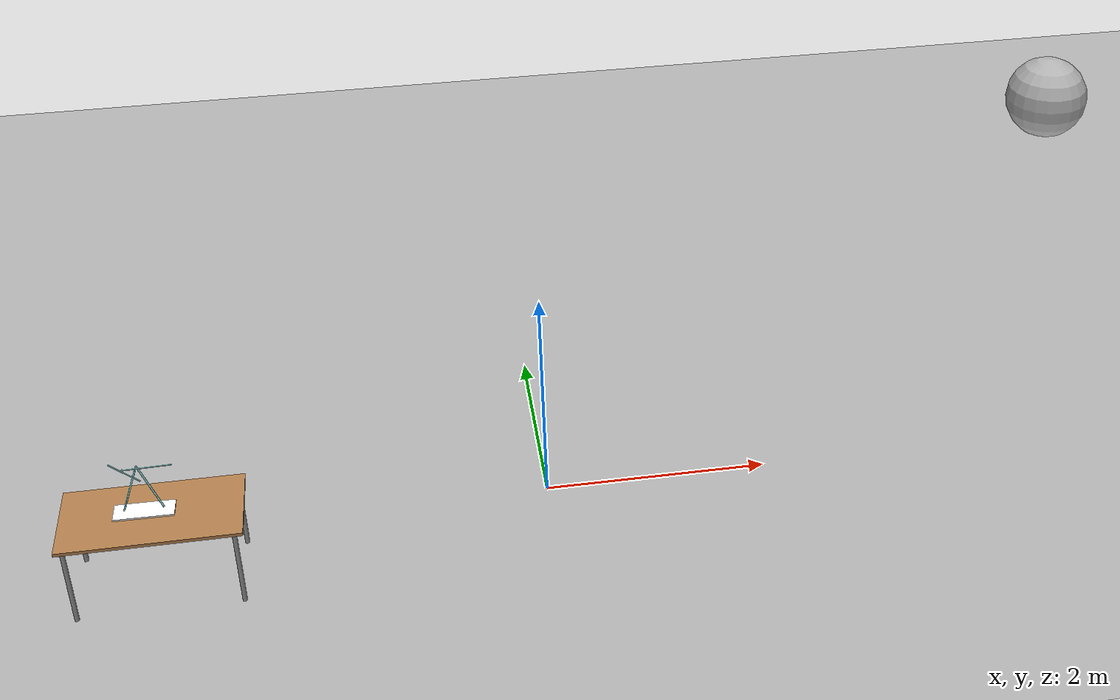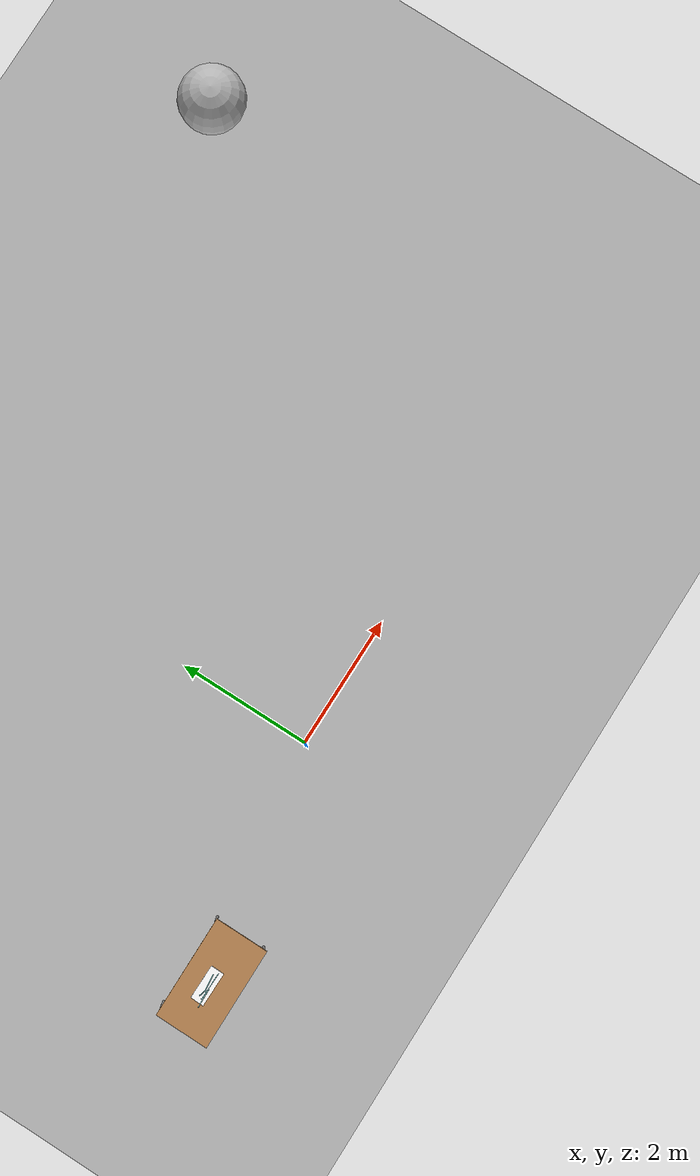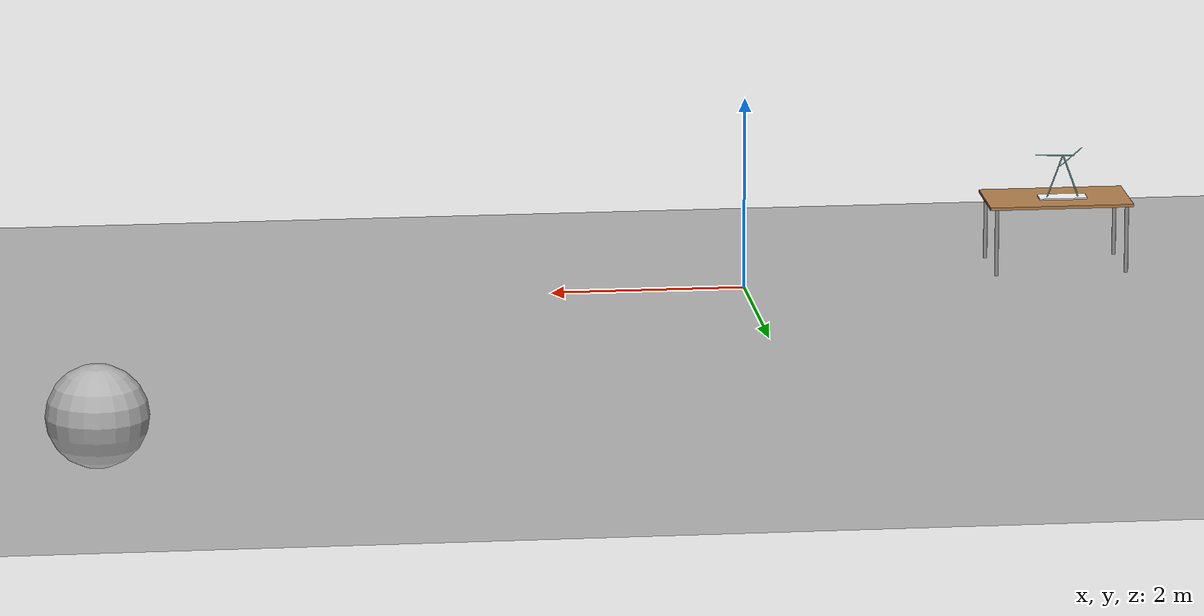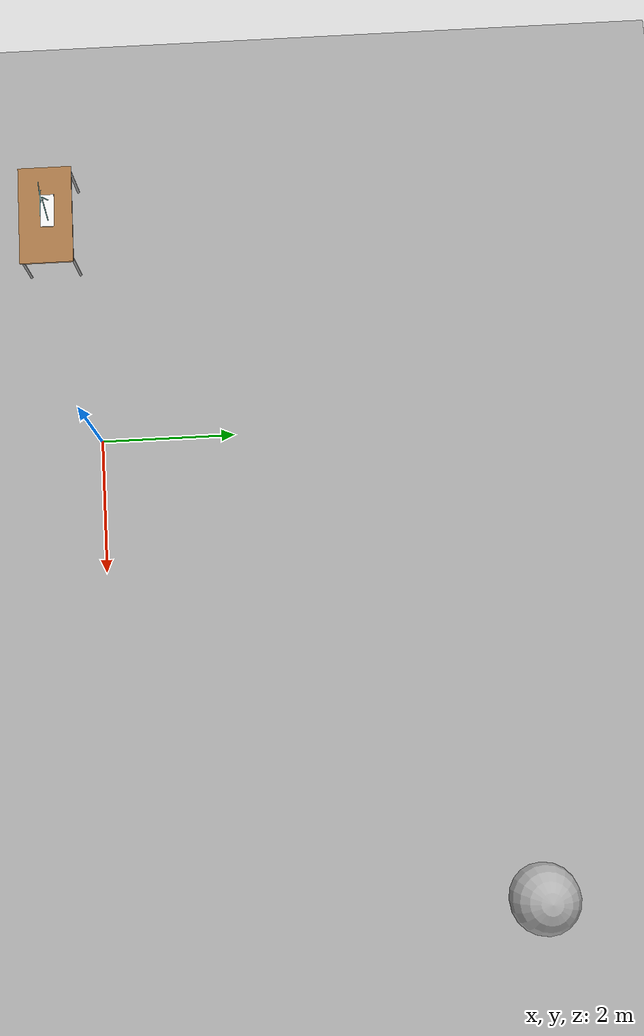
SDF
<sdf version="1.10">
 <world name="empty">
  <physics name="1ms" type="ignored">
   <max_step_size>0.001</max_step_size>
   <real_time_factor>1</real_time_factor>
   <real_time_update_rate>1000</real_time_update_rate>
  </physics>
  <plugin name="gz::sim::systems::Physics" filename="gz-sim-physics-system"/>
  <plugin name="gz::sim::systems::UserCommands" filename="gz-sim-user-commands-system"/>
  <plugin name="gz::sim::systems::SceneBroadcaster" filename="gz-sim-scene-broadcaster-system"/>
  <plugin name="gz::sim::systems::Contact" filename="gz-sim-contact-system"/>
  <gravity>0 0 -9.8000000000000007</gravity>
  <magnetic_field>5.5644999999999998e-06 2.2875799999999999e-05 -4.2388400000000002e-05</magnetic_field>
  <atmosphere type="adiabatic"/>
  <scene>
   <ambient>0.400000006 0.400000006 0.400000006 1</ambient>
   <background>0.699999988 0.699999988 0.699999988 1</background>
   <shadows>true</shadows>
  </scene>
  <model name="Table">
   <static>true</static>
   <link name="link">
    <collision name="surface">
     <pose>0 0 1 0 0 0</pose>
     <geometry><box><size>1.5 0.80000000000000004 0.029999999999999999</size></box></geometry>
     <surface><friction><ode><mu>0.59999999999999998</mu><mu2>0.59999999999999998</mu2></ode></friction></surface>
    </collision>
    <visual name="visual1">
     <pose>0 0 1 0 0 0</pose>
     <geometry><box><size>1.5 0.80000000000000004 0.029999999999999999</size></box></geometry>
     <material>
      <diffuse>1 1 1 1</diffuse>
      <script><uri>file://media/materials/scripts/gazebo.material</uri><name>Gazebo/Wood</name></script>
      <pbr>
       <metal>
        <albedo_map>https://fuel.gazebosim.org/1.0/openrobotics/models/table/4/files/Table_Diffuse.jpg</albedo_map>
       </metal>
      </pbr>
     </material>
    </visual>
    <collision name="front_left_leg">
     <pose>0.68000000000000005 0.38 0.5 0 0 0</pose>
     <geometry><cylinder><radius>0.02</radius><length>1</length></cylinder></geometry>
    </collision>
    <visual name="front_left_leg">
     <pose>0.68000000000000005 0.38 0.5 0 0 0</pose>
     <geometry><cylinder><radius>0.02</radius><length>1</length></cylinder></geometry>
     <material>
      <diffuse>0.5 0.5 0.5 1</diffuse>
      <script><uri>file://media/materials/scripts/gazebo.material</uri><name>Gazebo/Grey</name></script>
     </material>
    </visual>
    <collision name="front_right_leg">
     <pose>0.68000000000000005 -0.38 0.5 0 0 0</pose>
     <geometry><cylinder><radius>0.02</radius><length>1</length></cylinder></geometry>
    </collision>
    <visual name="front_right_leg">
     <pose>0.68000000000000005 -0.38 0.5 0 0 0</pose>
     <geometry><cylinder><radius>0.02</radius><length>1</length></cylinder></geometry>
     <material>
      <diffuse>0.5 0.5 0.5 1</diffuse>
      <script><uri>file://media/materials/scripts/gazebo.material</uri><name>Gazebo/Grey</name></script>
     </material>
    </visual>
    <collision name="back_right_leg">
     <pose>-0.68000000000000005 -0.38 0.5 0 0 0</pose>
     <geometry><cylinder><radius>0.02</radius><length>1</length></cylinder></geometry>
    </collision>
    <visual name="back_right_leg">
     <pose>-0.68000000000000005 -0.38 0.5 0 0 0</pose>
     <geometry><cylinder><radius>0.02</radius><length>1</length></cylinder></geometry>
     <material>
      <diffuse>0.5 0.5 0.5 1</diffuse>
      <script><uri>file://media/materials/scripts/gazebo.material</uri><name>Gazebo/Grey</name></script>
     </material>
    </visual>
    <collision name="back_left_leg">
     <pose>-0.68000000000000005 0.38 0.5 0 0 0</pose>
     <geometry><cylinder><radius>0.02</radius><length>1</length></cylinder></geometry>
    </collision>
    <visual name="back_left_leg">
     <pose>-0.68000000000000005 0.38 0.5 0 0 0</pose>
     <geometry><cylinder><radius>0.02</radius><length>1</length></cylinder></geometry>
     <material>
      <diffuse>0.5 0.5 0.5 1</diffuse>
      <script><uri>file://media/materials/scripts/gazebo.material</uri><name>Gazebo/Grey</name></script>
     </material>
    </visual>
    <inertial>
     <mass>1</mass>
     <inertia><ixx>1</ixx><ixy>0</ixy><ixz>0</ixz><iyy>1</iyy><iyz>0</iyz><izz>1</izz></inertia>
    </inertial>
   </link>
   <pose>-3.3481700000000001 -0.64016600000000001 -0.29861799999999999 0 0 0</pose>
  </model>
  <model name="pendulum">
   <link name="base">
    <inertial auto="true">
     <pose>-0.0012303560498434795 0.00091051956001138323 0.020588358777444447 0 0 0</pose>
     <mass>4.4644839919190522</mass>
     <inertia>
      <ixx>0.11341283466323132</ixx>
      <ixy>-5.0013973426137008e-06</ixy>
      <ixz>0.0011228137034167856</ixz>
      <iyy>0.038772302722194549</iyy>
      <iyz>8.1659178430312177e-05</iyz>
      <izz>0.1018878577257607</izz>
     </inertia>
    </inertial>
    <visual name="vis_plate_on_ground">
     <pose>0 0.001 0.00050000000000000001 0 0 0</pose>
     <geometry><box><size>0.20000000000000001 0.5 0.014999999999999999</size></box></geometry>
     <material>
      <ambient>1 1 1 1</ambient>
      <diffuse>1 1 1 1</diffuse>
      <specular>1 1 1 1</specular>
      <pbr>
       <metal>
        <albedo_map>materials/Wood/Wood_COLOR.jpg</albedo_map>
        <normal_map>materials/Wood/Wood_NORM.jpg</normal_map>
        <roughness_map>materials/Wood/Wood_ROUGH.jpg</roughness_map>
       </metal>
      </pbr>
     </material>
    </visual>
    <visual name="vis_pole">
     <pose>-0.01375 0.081900000000000001 0.22500000000000001 0.34899999999999998 0 0</pose>
     <geometry><cylinder><length>0.4788</length><radius>0.0070000000000000001</radius></cylinder></geometry>
     <material>
      <ambient>0.660000026 1 1 1</ambient>
      <diffuse>0.660000026 1 1 1</diffuse>
      <specular>0.660000026 1 1 1</specular>
      <pbr><metal><metalness>0.9</metalness></metal></pbr>
     </material>
    </visual>
    <visual name="vis_pole2">
     <pose>-0.01375 -0.081900000000000001 0.22500000000000001 -0.34899999999999998 0 0</pose>
     <geometry><cylinder><length>0.4788</length><radius>0.0070000000000000001</radius></cylinder></geometry>
     <material>
      <ambient>0.660000026 1 1 1</ambient>
      <diffuse>0.660000026 1 1 1</diffuse>
      <specular>0.660000026 1 1 1</specular>
      <pbr><metal><metalness>0.9</metalness></metal></pbr>
     </material>
    </visual>
    <collision name="col_plate_on_ground">
     <density>2710</density>
     <pose>0 0.001 0.00050000000000000001 0 0 0</pose>
     <geometry><box><size>0.20000000000000001 0.5 0.014999999999999999</size></box></geometry>
    </collision>
    <collision name="col_pole">
     <density>2710</density>
     <pose>-0.01375 0.081900000000000001 0.22500000000000001 0.34899999999999998 0 0</pose>
     <geometry><cylinder><length>0.4788</length><radius>0.0070000000000000001</radius></cylinder></geometry>
    </collision>
    <collision name="col_pole2">
     <density>2710</density>
     <pose>-0.01375 -0.081900000000000001 0.22500000000000001 -0.34899999999999998 0 0</pose>
     <geometry><cylinder><length>0.4788</length><radius>0.0070000000000000001</radius></cylinder></geometry>
    </collision>
   </link>
   <link name="upper_link">
    <pose>-1.1095568908103814e-12 0.08707669666403639 0.44339256002930161 1.6009349978430896 -7.5888601838749163e-12 -5.7979598715973162e-13</pose>
    <inertial auto="true">
     <pose>0.0085981308411214961 0 0.040766355140186922 0 0 0</pose>
     <mass>0.11387095272017905</mass>
     <inertia>
      <ixx>0.0017332803132548633</ixx>
      <ixy>-5.1286877684005049e-35</ixy>
      <ixz>7.4601936826155947e-06</ixz>
      <iyy>0.0017351140112182809</iyy>
      <iyz>1.8838197508913673e-40</iyz>
      <izz>4.3745101093934988e-06</izz>
     </inertia>
    </inertial>
    <visual name="vis_upper_joint">
     <pose>-0.0025000000000000001 0 0.087499999999999994 3.1415926535897931 1.5707926536359933 3.1415926535897931</pose>
     <geometry>
      <cylinder><radius>0.0050000000000000001</radius><length>0.014999999999999999</length></cylinder>
     </geometry>
     <material>
      <ambient>0.660000026 1 1 1</ambient>
      <diffuse>0.660000026 1 1 1</diffuse>
      <specular>0.660000026 1 1 1</specular>
      <pbr><metal><metalness>0.9</metalness></metal></pbr>
     </material>
    </visual>
    <visual name="vis_bob2">
     <pose>0.01 0 0.20000000000000001 3.1415926535897931 1.5707926536359933 3.1415926535897931</pose>
     <geometry><cylinder><radius>0.0050000000000000001</radius><length>0.02</length></cylinder></geometry>
     <material>
      <ambient>0.660000026 1 1 1</ambient>
      <diffuse>0.660000026 1 1 1</diffuse>
      <specular>0.660000026 1 1 1</specular>
      <pbr><metal><metalness>0.9</metalness></metal></pbr>
     </material>
    </visual>
    <visual name="vis_cylinder">
     <pose>0.01 0 0 0 0 0</pose>
     <geometry>
      <cylinder><radius>0.0050000000000000001</radius><length>0.39500000000000002</length></cylinder>
     </geometry>
     <material>
      <ambient>0.660000026 1 1 1</ambient>
      <diffuse>0.660000026 1 1 1</diffuse>
      <specular>0.660000026 1 1 1</specular>
      <pbr><metal><metalness>0.9</metalness></metal></pbr>
     </material>
    </visual>
    <collision name="col_upper_joint">
     <density>2710</density>
     <pose>-0.0025000000000000001 0 0.087499999999999994 3.1415926535897931 1.5707926536359933 3.1415926535897931</pose>
     <geometry><cylinder><radius>0.01</radius><length>0.014999999999999999</length></cylinder></geometry>
    </collision>
    <collision name="col_bob2">
     <density>2710</density>
     <pose>0.01 0 0.20699999999999999 3.1415926535897931 1.5707926536359933 3.1415926535897931</pose>
     <geometry><cylinder><radius>0.01</radius><length>0.02</length></cylinder></geometry>
    </collision>
    <collision name="col_cylinder">
     <density>2710</density>
     <pose>0.01 0 0 0 0 0</pose>
     <geometry>
      <cylinder><radius>0.0050000000000000001</radius><length>0.39500000000000002</length></cylinder>
     </geometry>
    </collision>
   </link>
   <link name="lower_link">
    <pose>0.024999999998840838 -0.11140768838060788 0.43482195921674904 -2.275272606541749 -7.5895023301102985e-12 -5.797401336125813e-13</pose>
    <inertial auto="true">
     <pose>0 0 0.025000000000000001 0 0 0</pose>
     <mass>0.063852870684212554</mass>
     <inertia>
      <ixx>0.00047929561057337048</ixx>
      <ixy>0</ixy>
      <ixz>0</ixz>
      <iyy>0.00047929561057337048</iyy>
      <iyz>0</iyz>
      <izz>7.9816088355265694e-07</izz>
     </inertia>
    </inertial>
    <visual name="vis_cylinder">
     <pose>0 0 0.025000000000000001 0 0 0</pose>
     <geometry>
      <cylinder><radius>0.0050000000000000001</radius><length>0.29999999999999999</length></cylinder>
     </geometry>
     <material>
      <ambient>0.660000026 1 1 1</ambient>
      <diffuse>0.660000026 1 1 1</diffuse>
      <specular>0.660000026 1 1 1</specular>
      <pbr><metal><metalness>0.9</metalness></metal></pbr>
     </material>
    </visual>
    <collision name="col_cylinder">
     <density>2710</density>
     <pose>0 0 0.025000000000000001 0 0 0</pose>
     <geometry>
      <cylinder><radius>0.0050000000000000001</radius><length>0.29999999999999999</length></cylinder>
     </geometry>
    </collision>
   </link>
   <joint name="upper_joint" type="revolute">
    <pose>-0.0024999999999999996 -5.5511151231257827e-17 0.087500000000000022 0 0 0</pose>
    <parent>base</parent>
    <child>upper_link</child>
    <axis>
     <xyz>1 0 0</xyz>
     <limit>
      <lower>-inf</lower>
      <upper>inf</upper>
      <effort>inf</effort>
      <velocity>inf</velocity>
      <stiffness>100000000</stiffness>
      <dissipation>1</dissipation>
     </limit>
     <dynamics>
      <spring_reference>0</spring_reference>
      <spring_stiffness>0</spring_stiffness>
      <damping>0</damping>
      <friction>0</friction>
     </dynamics>
    </axis>
   </joint>
   <joint name="lower_joint" type="revolute">
    <pose>-0.014999999999999996 -0.0010154900000000078 -0.0027330600000003424 1.77 -1.3782188922632868e-27 8.6684348364220725e-28</pose>
    <parent>upper_link</parent>
    <child>lower_link</child>
    <axis>
     <xyz>1 -2.2255236904124528e-67 3.0292258760486853e-28</xyz>
     <limit>
      <lower>-inf</lower>
      <upper>inf</upper>
      <effort>inf</effort>
      <velocity>inf</velocity>
      <stiffness>100000000</stiffness>
      <dissipation>1</dissipation>
     </limit>
     <dynamics>
      <spring_reference>0</spring_reference>
      <spring_stiffness>0</spring_stiffness>
      <damping>0</damping>
      <friction>0</friction>
     </dynamics>
    </axis>
   </joint>
   <pose>-3.4068399999999999 -0.60838599999999998 0.72338100000000005 1.3490300000000041e-11 -3.8293100000000005e-10 -1.58555</pose>
   <static>false</static>
  </model>
  <model name="ground_plane">
   <static>true</static>
   <link name="link">
    <collision name="collision">
     <geometry><plane><normal>0 0 1</normal><size>100 100</size></plane></geometry>
     <surface><friction><ode><mu>100</mu><mu2>50</mu2></ode></friction></surface>
    </collision>
    <visual name="visual">
     <cast_shadows>false</cast_shadows>
     <geometry><plane><normal>0 0 1</normal><size>100 100</size></plane></geometry>
     <material>
      <ambient>0.300000012 0.300000012 0.300000012 1</ambient>
      <diffuse>0.699999988 0.699999988 0.699999988 1</diffuse>
      <specular>0.00999999978 0.00999999978 0.00999999978 1</specular>
     </material>
    </visual>
    <inertial>
     <mass>1</mass>
     <inertia><ixx>1</ixx><ixy>0</ixy><ixz>0</ixz><iyy>1</iyy><iyz>0</iyz><izz>1</izz></inertia>
    </inertial>
   </link>
   <pose>4.1498913592415505 -1.7287150260537345 0 0 0 0</pose>
  </model>
  <model name="sphere">
   <pose>6.9498248698957354 6.0061633088347746 0.5 0 0 0</pose>
   <link name="sphere_link">
    <inertial>
     <inertia>
      <ixx>0.10000000000000001</ixx>
      <ixy>0</ixy>
      <ixz>0</ixz>
      <iyy>0.10000000000000001</iyy>
      <iyz>0</iyz>
      <izz>0.10000000000000001</izz>
     </inertia>
     <mass>1</mass>
    </inertial>
    <collision name="sphere_collision"><geometry><sphere><radius>0.5</radius></sphere></geometry></collision>
    <visual name="sphere_visual">
     <geometry><sphere><radius>0.5</radius></sphere></geometry>
     <material>
      <ambient>0.300000012 0.300000012 0.300000012 1</ambient>
      <diffuse>0.699999988 0.699999988 0.699999988 1</diffuse>
      <specular>1 1 1 1</specular>
     </material>
    </visual>
   </link>
   <static>false</static>
  </model>
  <light name="sun" type="directional">
   <pose>0 0 10 0 0 0</pose>
   <intensity>1</intensity>
   <direction>-0.5 0.10000000000000001 -0.90000000000000002</direction>
   <diffuse>0.800000012 0.800000012 0.800000012 1</diffuse>
   <specular>0.200000003 0.200000003 0.200000003 1</specular>
   <attenuation>
    <range>1000</range>
    <linear>0.0099999997764825821</linear>
    <constant>0.89999997615814209</constant>
    <quadratic>0.0010000000474974513</quadratic>
   </attenuation>
   <spot><inner_angle>0</inner_angle><outer_angle>0</outer_angle><falloff>0</falloff></spot>
  </light>
 </world>
</sdf>
